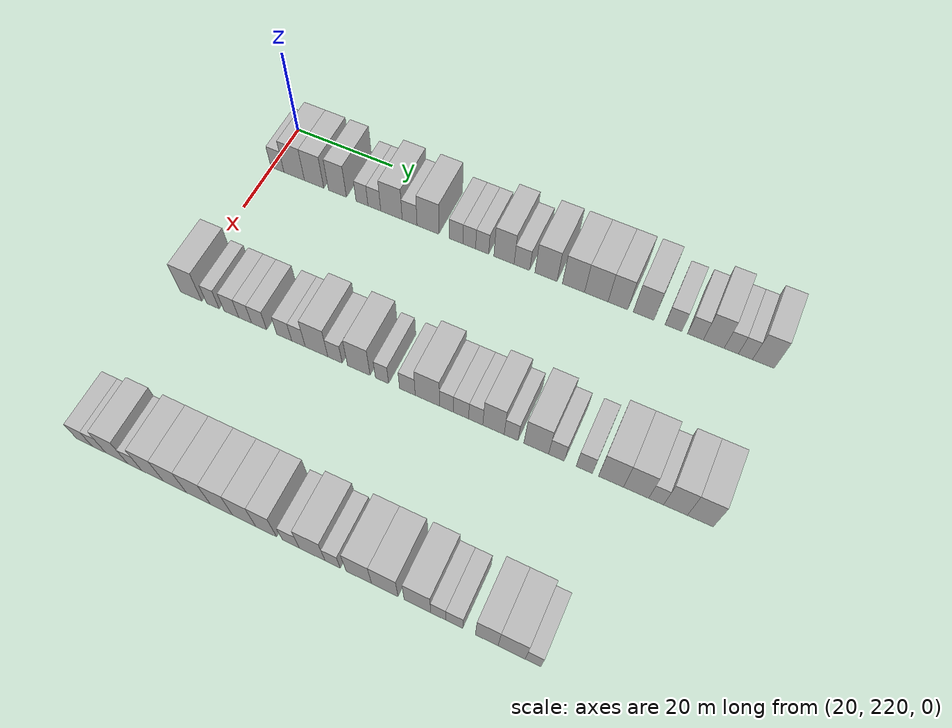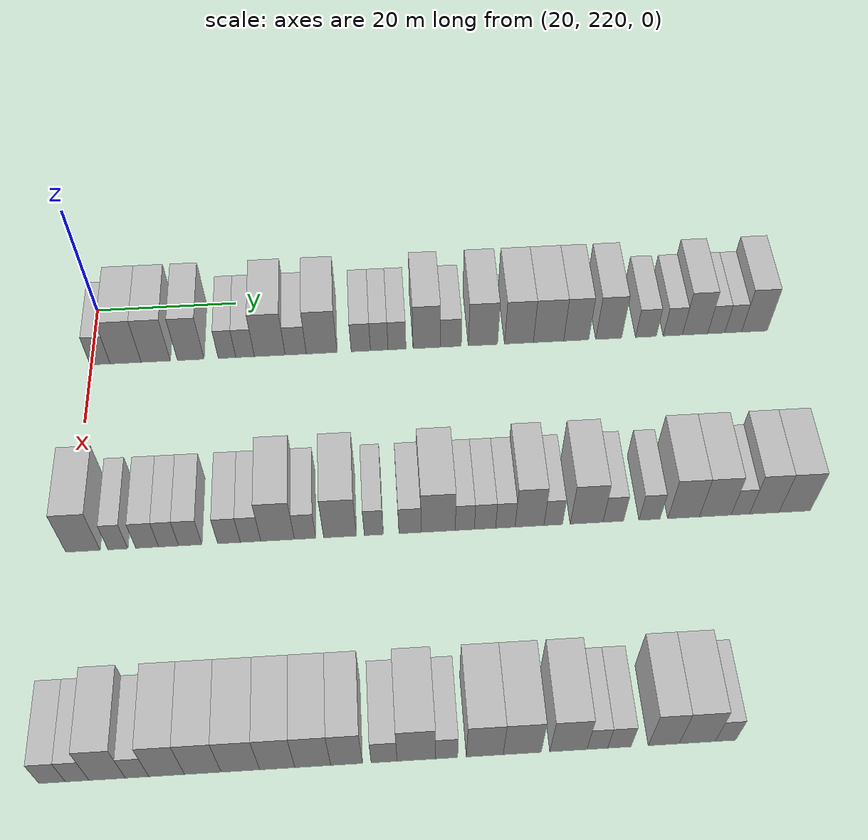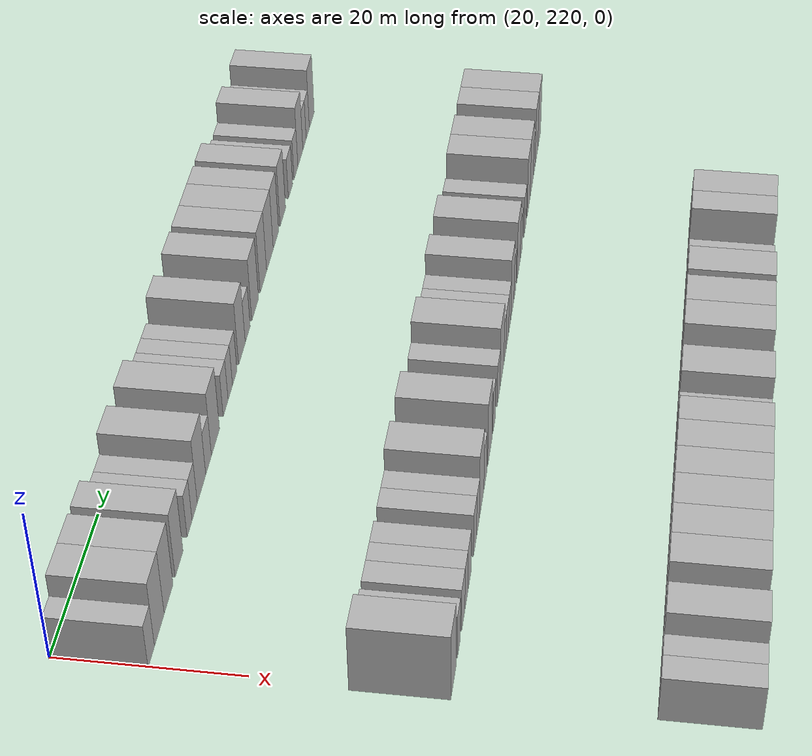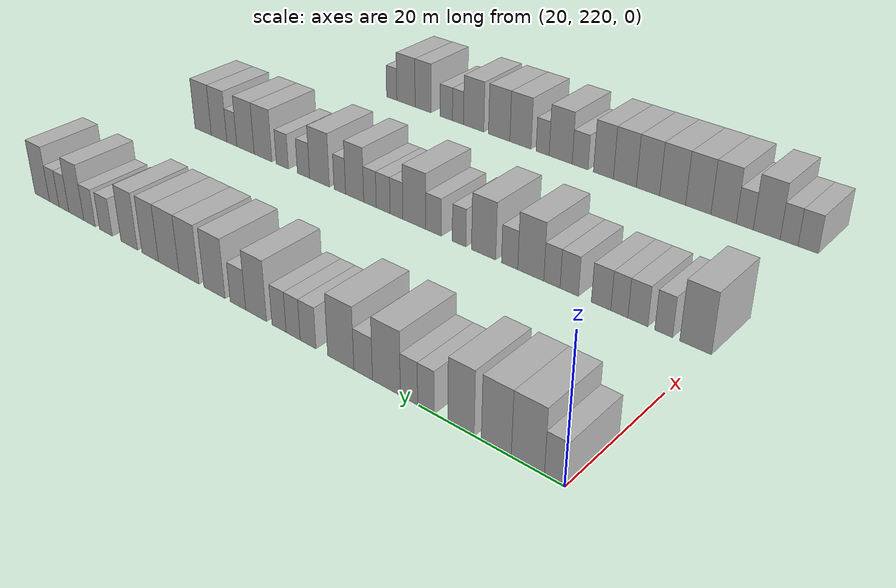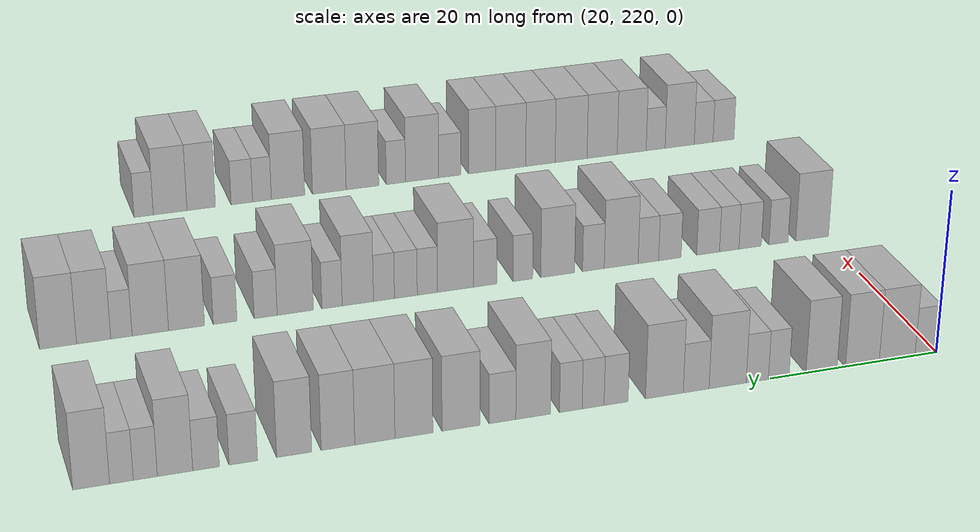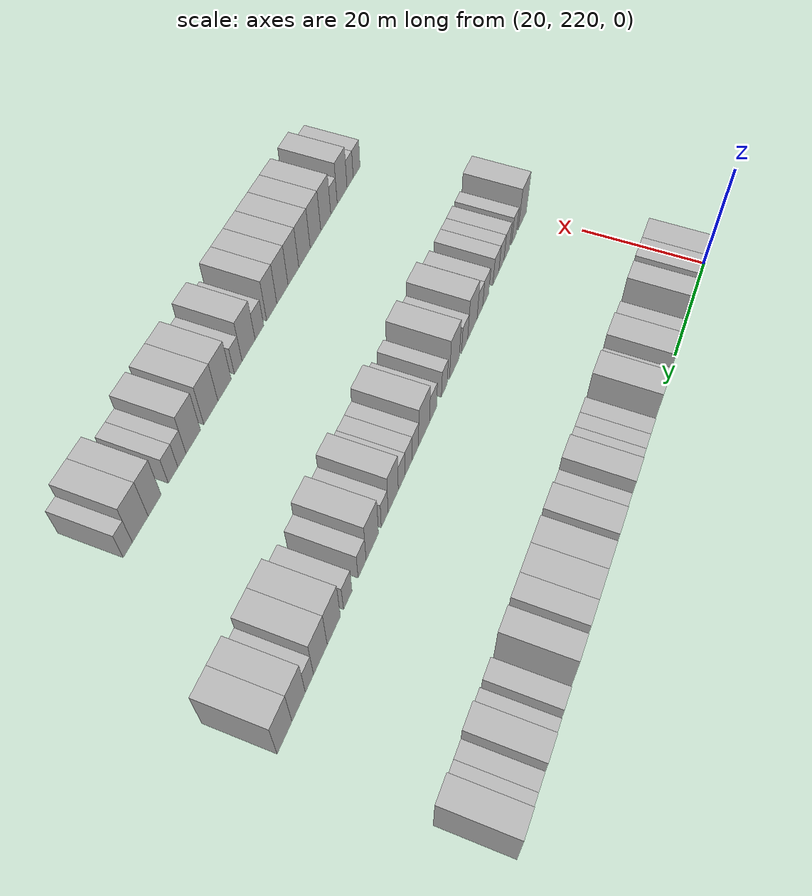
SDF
<sdf version="1.6">
 <world name="default">
  <model name="building_163">
   <static>1</static>
   <pose>25.0000 221.2316 0 0.000000 0.000000 0.000000</pose>
   <link name="link">
    <pose>0 0 3.00 0 0 0</pose>
    <collision name="collision"><geometry><box><size>10.0000 2.8083 6.0000</size></box></geometry></collision>
    <visual name="visual">
     <cast_shadows>0</cast_shadows>
     <geometry><box><size>10.0000 2.8083 6.0000</size></box></geometry>
     <material>
      <script>
       <uri>model://HANNAS_wall/materials/scripts</uri>
       <uri>model://HANNAS_wall/materials/textures</uri>
       <name>vrc/HANNAS_wall</name>
      </script>
     </material>
    </visual>
   </link>
  </model>
  <model name="building_164">
   <static>1</static>
   <pose>25.0000 224.8110 0 0.000000 0.000000 0.000000</pose>
   <link name="link">
    <pose>0 0 4.50 0 0 0</pose>
    <collision name="collision"><geometry><box><size>10.0000 4.3504 9.0000</size></box></geometry></collision>
    <visual name="visual">
     <cast_shadows>0</cast_shadows>
     <geometry><box><size>10.0000 4.3504 9.0000</size></box></geometry>
     <material>
      <script>
       <uri>model://HANNAS_wall/materials/scripts</uri>
       <uri>model://HANNAS_wall/materials/textures</uri>
       <name>vrc/HANNAS_wall</name>
      </script>
     </material>
    </visual>
   </link>
  </model>
  <model name="building_165">
   <static>1</static>
   <pose>25.0000 229.0244 0 0.000000 0.000000 0.000000</pose>
   <link name="link">
    <pose>0 0 4.50 0 0 0</pose>
    <collision name="collision"><geometry><box><size>10.0000 4.0764 9.0000</size></box></geometry></collision>
    <visual name="visual">
     <cast_shadows>0</cast_shadows>
     <geometry><box><size>10.0000 4.0764 9.0000</size></box></geometry>
     <material>
      <script>
       <uri>model://HANNAS_wall/materials/scripts</uri>
       <uri>model://HANNAS_wall/materials/textures</uri>
       <name>vrc/HANNAS_wall</name>
      </script>
     </material>
    </visual>
   </link>
  </model>
  <model name="building_166">
   <static>1</static>
   <pose>25.0000 233.9301 0 0.000000 0.000000 0.000000</pose>
   <link name="link">
    <pose>0 0 4.50 0 0 0</pose>
    <collision name="collision"><geometry><box><size>10.0000 3.7351 9.0000</size></box></geometry></collision>
    <visual name="visual">
     <cast_shadows>0</cast_shadows>
     <geometry><box><size>10.0000 3.7351 9.0000</size></box></geometry>
     <material>
      <script>
       <uri>model://HANNAS_wall/materials/scripts</uri>
       <uri>model://HANNAS_wall/materials/textures</uri>
       <name>vrc/HANNAS_wall</name>
      </script>
     </material>
    </visual>
   </link>
  </model>
  <model name="building_167">
   <static>1</static>
   <pose>25.0000 239.0233 0 0.000000 0.000000 0.000000</pose>
   <link name="link">
    <pose>0 0 3.00 0 0 0</pose>
    <collision name="collision"><geometry><box><size>10.0000 2.4512 6.0000</size></box></geometry></collision>
    <visual name="visual">
     <cast_shadows>0</cast_shadows>
     <geometry><box><size>10.0000 2.4512 6.0000</size></box></geometry>
     <material>
      <script>
       <uri>model://HANNAS_wall/materials/scripts</uri>
       <uri>model://HANNAS_wall/materials/textures</uri>
       <name>vrc/HANNAS_wall</name>
      </script>
     </material>
    </visual>
   </link>
  </model>
  <model name="building_168">
   <static>1</static>
   <pose>25.0000 241.5565 0 0.000000 0.000000 0.000000</pose>
   <link name="link">
    <pose>0 0 3.00 0 0 0</pose>
    <collision name="collision"><geometry><box><size>10.0000 2.6152 6.0000</size></box></geometry></collision>
    <visual name="visual">
     <cast_shadows>0</cast_shadows>
     <geometry><box><size>10.0000 2.6152 6.0000</size></box></geometry>
     <material>
      <script>
       <uri>model://HANNAS_wall/materials/scripts</uri>
       <uri>model://HANNAS_wall/materials/textures</uri>
       <name>vrc/HANNAS_wall</name>
      </script>
     </material>
    </visual>
   </link>
  </model>
  <model name="building_169">
   <static>1</static>
   <pose>25.0000 245.0369 0 0.000000 0.000000 0.000000</pose>
   <link name="link">
    <pose>0 0 4.50 0 0 0</pose>
    <collision name="collision"><geometry><box><size>10.0000 4.3455 9.0000</size></box></geometry></collision>
    <visual name="visual">
     <cast_shadows>0</cast_shadows>
     <geometry><box><size>10.0000 4.3455 9.0000</size></box></geometry>
     <material>
      <script>
       <uri>model://HANNAS_wall/materials/scripts</uri>
       <uri>model://HANNAS_wall/materials/textures</uri>
       <name>vrc/HANNAS_wall</name>
      </script>
     </material>
    </visual>
   </link>
  </model>
  <model name="building_170">
   <static>1</static>
   <pose>25.0000 248.7061 0 0.000000 0.000000 0.000000</pose>
   <link name="link">
    <pose>0 0 3.00 0 0 0</pose>
    <collision name="collision"><geometry><box><size>10.0000 2.9929 6.0000</size></box></geometry></collision>
    <visual name="visual">
     <cast_shadows>0</cast_shadows>
     <geometry><box><size>10.0000 2.9929 6.0000</size></box></geometry>
     <material>
      <script>
       <uri>model://HANNAS_wall/materials/scripts</uri>
       <uri>model://HANNAS_wall/materials/textures</uri>
       <name>vrc/HANNAS_wall</name>
      </script>
     </material>
    </visual>
   </link>
  </model>
  <model name="building_171">
   <static>1</static>
   <pose>25.0000 252.3776 0 0.000000 0.000000 0.000000</pose>
   <link name="link">
    <pose>0 0 4.50 0 0 0</pose>
    <collision name="collision"><geometry><box><size>10.0000 4.3501 9.0000</size></box></geometry></collision>
    <visual name="visual">
     <cast_shadows>0</cast_shadows>
     <geometry><box><size>10.0000 4.3501 9.0000</size></box></geometry>
     <material>
      <script>
       <uri>model://HANNAS_wall/materials/scripts</uri>
       <uri>model://HANNAS_wall/materials/textures</uri>
       <name>vrc/HANNAS_wall</name>
      </script>
     </material>
    </visual>
   </link>
  </model>
  <model name="building_172">
   <static>1</static>
   <pose>25.0000 257.9207 0 0.000000 0.000000 0.000000</pose>
   <link name="link">
    <pose>0 0 3.00 0 0 0</pose>
    <collision name="collision"><geometry><box><size>10.0000 2.7360 6.0000</size></box></geometry></collision>
    <visual name="visual">
     <cast_shadows>0</cast_shadows>
     <geometry><box><size>10.0000 2.7360 6.0000</size></box></geometry>
     <material>
      <script>
       <uri>model://HANNAS_wall/materials/scripts</uri>
       <uri>model://HANNAS_wall/materials/textures</uri>
       <name>vrc/HANNAS_wall</name>
      </script>
     </material>
    </visual>
   </link>
  </model>
  <model name="building_173">
   <static>1</static>
   <pose>25.0000 260.5329 0 0.000000 0.000000 0.000000</pose>
   <link name="link">
    <pose>0 0 3.00 0 0 0</pose>
    <collision name="collision"><geometry><box><size>10.0000 2.4884 6.0000</size></box></geometry></collision>
    <visual name="visual">
     <cast_shadows>0</cast_shadows>
     <geometry><box><size>10.0000 2.4884 6.0000</size></box></geometry>
     <material>
      <script>
       <uri>model://HANNAS_wall/materials/scripts</uri>
       <uri>model://HANNAS_wall/materials/textures</uri>
       <name>vrc/HANNAS_wall</name>
      </script>
     </material>
    </visual>
   </link>
  </model>
  <model name="building_174">
   <static>1</static>
   <pose>25.0000 263.0548 0 0.000000 0.000000 0.000000</pose>
   <link name="link">
    <pose>0 0 3.00 0 0 0</pose>
    <collision name="collision"><geometry><box><size>10.0000 2.5553 6.0000</size></box></geometry></collision>
    <visual name="visual">
     <cast_shadows>0</cast_shadows>
     <geometry><box><size>10.0000 2.5553 6.0000</size></box></geometry>
     <material>
      <script>
       <uri>model://HANNAS_wall/materials/scripts</uri>
       <uri>model://HANNAS_wall/materials/textures</uri>
       <name>vrc/HANNAS_wall</name>
      </script>
     </material>
    </visual>
   </link>
  </model>
  <model name="building_175">
   <static>1</static>
   <pose>25.0000 267.2758 0 0.000000 0.000000 0.000000</pose>
   <link name="link">
    <pose>0 0 4.50 0 0 0</pose>
    <collision name="collision"><geometry><box><size>10.0000 3.8867 9.0000</size></box></geometry></collision>
    <visual name="visual">
     <cast_shadows>0</cast_shadows>
     <geometry><box><size>10.0000 3.8867 9.0000</size></box></geometry>
     <material>
      <script>
       <uri>model://HANNAS_wall/materials/scripts</uri>
       <uri>model://HANNAS_wall/materials/textures</uri>
       <name>vrc/HANNAS_wall</name>
      </script>
     </material>
    </visual>
   </link>
  </model>
  <model name="building_176">
   <static>1</static>
   <pose>25.0000 270.7057 0 0.000000 0.000000 0.000000</pose>
   <link name="link">
    <pose>0 0 3.00 0 0 0</pose>
    <collision name="collision"><geometry><box><size>10.0000 2.9732 6.0000</size></box></geometry></collision>
    <visual name="visual">
     <cast_shadows>0</cast_shadows>
     <geometry><box><size>10.0000 2.9732 6.0000</size></box></geometry>
     <material>
      <script>
       <uri>model://HANNAS_wall/materials/scripts</uri>
       <uri>model://HANNAS_wall/materials/textures</uri>
       <name>vrc/HANNAS_wall</name>
      </script>
     </material>
    </visual>
   </link>
  </model>
  <model name="building_177">
   <static>1</static>
   <pose>25.0000 275.2808 0 0.000000 0.000000 0.000000</pose>
   <link name="link">
    <pose>0 0 4.50 0 0 0</pose>
    <collision name="collision"><geometry><box><size>10.0000 4.1769 9.0000</size></box></geometry></collision>
    <visual name="visual">
     <cast_shadows>0</cast_shadows>
     <geometry><box><size>10.0000 4.1769 9.0000</size></box></geometry>
     <material>
      <script>
       <uri>model://HANNAS_wall/materials/scripts</uri>
       <uri>model://HANNAS_wall/materials/textures</uri>
       <name>vrc/HANNAS_wall</name>
      </script>
     </material>
    </visual>
   </link>
  </model>
  <model name="building_178">
   <static>1</static>
   <pose>25.0000 280.4308 0 0.000000 0.000000 0.000000</pose>
   <link name="link">
    <pose>0 0 4.50 0 0 0</pose>
    <collision name="collision"><geometry><box><size>10.0000 4.1232 9.0000</size></box></geometry></collision>
    <visual name="visual">
     <cast_shadows>0</cast_shadows>
     <geometry><box><size>10.0000 4.1232 9.0000</size></box></geometry>
     <material>
      <script>
       <uri>model://HANNAS_wall/materials/scripts</uri>
       <uri>model://HANNAS_wall/materials/textures</uri>
       <name>vrc/HANNAS_wall</name>
      </script>
     </material>
    </visual>
   </link>
  </model>
  <model name="building_179">
   <static>1</static>
   <pose>25.0000 284.6614 0 0.000000 0.000000 0.000000</pose>
   <link name="link">
    <pose>0 0 4.50 0 0 0</pose>
    <collision name="collision"><geometry><box><size>10.0000 4.3380 9.0000</size></box></geometry></collision>
    <visual name="visual">
     <cast_shadows>0</cast_shadows>
     <geometry><box><size>10.0000 4.3380 9.0000</size></box></geometry>
     <material>
      <script>
       <uri>model://HANNAS_wall/materials/scripts</uri>
       <uri>model://HANNAS_wall/materials/textures</uri>
       <name>vrc/HANNAS_wall</name>
      </script>
     </material>
    </visual>
   </link>
  </model>
  <model name="building_180">
   <static>1</static>
   <pose>25.0000 288.6326 0 0.000000 0.000000 0.000000</pose>
   <link name="link">
    <pose>0 0 4.50 0 0 0</pose>
    <collision name="collision"><geometry><box><size>10.0000 3.6044 9.0000</size></box></geometry></collision>
    <visual name="visual">
     <cast_shadows>0</cast_shadows>
     <geometry><box><size>10.0000 3.6044 9.0000</size></box></geometry>
     <material>
      <script>
       <uri>model://HANNAS_wall/materials/scripts</uri>
       <uri>model://HANNAS_wall/materials/textures</uri>
       <name>vrc/HANNAS_wall</name>
      </script>
     </material>
    </visual>
   </link>
  </model>
  <model name="building_181">
   <static>1</static>
   <pose>25.0000 293.2981 0 0.000000 0.000000 0.000000</pose>
   <link name="link">
    <pose>0 0 4.50 0 0 0</pose>
    <collision name="collision"><geometry><box><size>10.0000 3.7267 9.0000</size></box></geometry></collision>
    <visual name="visual">
     <cast_shadows>0</cast_shadows>
     <geometry><box><size>10.0000 3.7267 9.0000</size></box></geometry>
     <material>
      <script>
       <uri>model://HANNAS_wall/materials/scripts</uri>
       <uri>model://HANNAS_wall/materials/textures</uri>
       <name>vrc/HANNAS_wall</name>
      </script>
     </material>
    </visual>
   </link>
  </model>
  <model name="building_182">
   <static>1</static>
   <pose>25.0000 298.6590 0 0.000000 0.000000 0.000000</pose>
   <link name="link">
    <pose>0 0 3.00 0 0 0</pose>
    <collision name="collision"><geometry><box><size>10.0000 2.9951 6.0000</size></box></geometry></collision>
    <visual name="visual">
     <cast_shadows>0</cast_shadows>
     <geometry><box><size>10.0000 2.9951 6.0000</size></box></geometry>
     <material>
      <script>
       <uri>model://HANNAS_wall/materials/scripts</uri>
       <uri>model://HANNAS_wall/materials/textures</uri>
       <name>vrc/HANNAS_wall</name>
      </script>
     </material>
    </visual>
   </link>
  </model>
  <model name="building_183">
   <static>1</static>
   <pose>25.0000 302.5436 0 0.000000 0.000000 0.000000</pose>
   <link name="link">
    <pose>0 0 3.00 0 0 0</pose>
    <collision name="collision"><geometry><box><size>10.0000 2.7740 6.0000</size></box></geometry></collision>
    <visual name="visual">
     <cast_shadows>0</cast_shadows>
     <geometry><box><size>10.0000 2.7740 6.0000</size></box></geometry>
     <material>
      <script>
       <uri>model://HANNAS_wall/materials/scripts</uri>
       <uri>model://HANNAS_wall/materials/textures</uri>
       <name>vrc/HANNAS_wall</name>
      </script>
     </material>
    </visual>
   </link>
  </model>
  <model name="building_184">
   <static>1</static>
   <pose>25.0000 305.7567 0 0.000000 0.000000 0.000000</pose>
   <link name="link">
    <pose>0 0 4.50 0 0 0</pose>
    <collision name="collision"><geometry><box><size>10.0000 3.6521 9.0000</size></box></geometry></collision>
    <visual name="visual">
     <cast_shadows>0</cast_shadows>
     <geometry><box><size>10.0000 3.6521 9.0000</size></box></geometry>
     <material>
      <script>
       <uri>model://HANNAS_wall/materials/scripts</uri>
       <uri>model://HANNAS_wall/materials/textures</uri>
       <name>vrc/HANNAS_wall</name>
      </script>
     </material>
    </visual>
   </link>
  </model>
  <model name="building_185">
   <static>1</static>
   <pose>25.0000 308.8152 0 0.000000 0.000000 0.000000</pose>
   <link name="link">
    <pose>0 0 3.00 0 0 0</pose>
    <collision name="collision"><geometry><box><size>10.0000 2.4648 6.0000</size></box></geometry></collision>
    <visual name="visual">
     <cast_shadows>0</cast_shadows>
     <geometry><box><size>10.0000 2.4648 6.0000</size></box></geometry>
     <material>
      <script>
       <uri>model://HANNAS_wall/materials/scripts</uri>
       <uri>model://HANNAS_wall/materials/textures</uri>
       <name>vrc/HANNAS_wall</name>
      </script>
     </material>
    </visual>
   </link>
  </model>
  <model name="building_186">
   <static>1</static>
   <pose>25.0000 311.2583 0 0.000000 0.000000 0.000000</pose>
   <link name="link">
    <pose>0 0 3.00 0 0 0</pose>
    <collision name="collision"><geometry><box><size>10.0000 2.4213 6.0000</size></box></geometry></collision>
    <visual name="visual">
     <cast_shadows>0</cast_shadows>
     <geometry><box><size>10.0000 2.4213 6.0000</size></box></geometry>
     <material>
      <script>
       <uri>model://HANNAS_wall/materials/scripts</uri>
       <uri>model://HANNAS_wall/materials/textures</uri>
       <name>vrc/HANNAS_wall</name>
      </script>
     </material>
    </visual>
   </link>
  </model>
  <model name="building_187">
   <static>1</static>
   <pose>25.0000 314.3374 0 0.000000 0.000000 0.000000</pose>
   <link name="link">
    <pose>0 0 4.50 0 0 0</pose>
    <collision name="collision"><geometry><box><size>10.0000 3.7370 9.0000</size></box></geometry></collision>
    <visual name="visual">
     <cast_shadows>0</cast_shadows>
     <geometry><box><size>10.0000 3.7370 9.0000</size></box></geometry>
     <material>
      <script>
       <uri>model://HANNAS_wall/materials/scripts</uri>
       <uri>model://HANNAS_wall/materials/textures</uri>
       <name>vrc/HANNAS_wall</name>
      </script>
     </material>
    </visual>
   </link>
  </model>
  <model name="building_398">
   <static>1</static>
   <pose>55.0000 221.6183 0 0.000000 0.000000 0.000000</pose>
   <link name="link">
    <pose>0 0 4.50 0 0 0</pose>
    <collision name="collision"><geometry><box><size>10.0000 4.3442 9.0000</size></box></geometry></collision>
    <visual name="visual">
     <cast_shadows>0</cast_shadows>
     <geometry><box><size>10.0000 4.3442 9.0000</size></box></geometry>
     <material>
      <script>
       <uri>model://HANNAS_wall/materials/scripts</uri>
       <uri>model://HANNAS_wall/materials/textures</uri>
       <name>vrc/HANNAS_wall</name>
      </script>
     </material>
    </visual>
   </link>
  </model>
  <model name="building_399">
   <static>1</static>
   <pose>55.0000 226.0464 0 0.000000 0.000000 0.000000</pose>
   <link name="link">
    <pose>0 0 3.00 0 0 0</pose>
    <collision name="collision"><geometry><box><size>10.0000 2.5120 6.0000</size></box></geometry></collision>
    <visual name="visual">
     <cast_shadows>0</cast_shadows>
     <geometry><box><size>10.0000 2.5120 6.0000</size></box></geometry>
     <material>
      <script>
       <uri>model://HANNAS_wall/materials/scripts</uri>
       <uri>model://HANNAS_wall/materials/textures</uri>
       <name>vrc/HANNAS_wall</name>
      </script>
     </material>
    </visual>
   </link>
  </model>
  <model name="building_400">
   <static>1</static>
   <pose>55.0000 229.7549 0 0.000000 0.000000 0.000000</pose>
   <link name="link">
    <pose>0 0 3.00 0 0 0</pose>
    <collision name="collision"><geometry><box><size>10.0000 2.9050 6.0000</size></box></geometry></collision>
    <visual name="visual">
     <cast_shadows>0</cast_shadows>
     <geometry><box><size>10.0000 2.9050 6.0000</size></box></geometry>
     <material>
      <script>
       <uri>model://HANNAS_wall/materials/scripts</uri>
       <uri>model://HANNAS_wall/materials/textures</uri>
       <name>vrc/HANNAS_wall</name>
      </script>
     </material>
    </visual>
   </link>
  </model>
  <model name="building_401">
   <static>1</static>
   <pose>55.0000 232.4763 0 0.000000 0.000000 0.000000</pose>
   <link name="link">
    <pose>0 0 3.00 0 0 0</pose>
    <collision name="collision"><geometry><box><size>10.0000 2.5379 6.0000</size></box></geometry></collision>
    <visual name="visual">
     <cast_shadows>0</cast_shadows>
     <geometry><box><size>10.0000 2.5379 6.0000</size></box></geometry>
     <material>
      <script>
       <uri>model://HANNAS_wall/materials/scripts</uri>
       <uri>model://HANNAS_wall/materials/textures</uri>
       <name>vrc/HANNAS_wall</name>
      </script>
     </material>
    </visual>
   </link>
  </model>
  <model name="building_402">
   <static>1</static>
   <pose>55.0000 235.2204 0 0.000000 0.000000 0.000000</pose>
   <link name="link">
    <pose>0 0 3.00 0 0 0</pose>
    <collision name="collision"><geometry><box><size>10.0000 2.9503 6.0000</size></box></geometry></collision>
    <visual name="visual">
     <cast_shadows>0</cast_shadows>
     <geometry><box><size>10.0000 2.9503 6.0000</size></box></geometry>
     <material>
      <script>
       <uri>model://HANNAS_wall/materials/scripts</uri>
       <uri>model://HANNAS_wall/materials/textures</uri>
       <name>vrc/HANNAS_wall</name>
      </script>
     </material>
    </visual>
   </link>
  </model>
  <model name="building_403">
   <static>1</static>
   <pose>55.0000 240.1378 0 0.000000 0.000000 0.000000</pose>
   <link name="link">
    <pose>0 0 3.00 0 0 0</pose>
    <collision name="collision"><geometry><box><size>10.0000 2.8846 6.0000</size></box></geometry></collision>
    <visual name="visual">
     <cast_shadows>0</cast_shadows>
     <geometry><box><size>10.0000 2.8846 6.0000</size></box></geometry>
     <material>
      <script>
       <uri>model://HANNAS_wall/materials/scripts</uri>
       <uri>model://HANNAS_wall/materials/textures</uri>
       <name>vrc/HANNAS_wall</name>
      </script>
     </material>
    </visual>
   </link>
  </model>
  <model name="building_404">
   <static>1</static>
   <pose>55.0000 242.8848 0 0.000000 0.000000 0.000000</pose>
   <link name="link">
    <pose>0 0 3.00 0 0 0</pose>
    <collision name="collision"><geometry><box><size>10.0000 2.6093 6.0000</size></box></geometry></collision>
    <visual name="visual">
     <cast_shadows>0</cast_shadows>
     <geometry><box><size>10.0000 2.6093 6.0000</size></box></geometry>
     <material>
      <script>
       <uri>model://HANNAS_wall/materials/scripts</uri>
       <uri>model://HANNAS_wall/materials/textures</uri>
       <name>vrc/HANNAS_wall</name>
      </script>
     </material>
    </visual>
   </link>
  </model>
  <model name="building_405">
   <static>1</static>
   <pose>55.0000 246.3378 0 0.000000 0.000000 0.000000</pose>
   <link name="link">
    <pose>0 0 4.50 0 0 0</pose>
    <collision name="collision"><geometry><box><size>10.0000 4.2967 9.0000</size></box></geometry></collision>
    <visual name="visual">
     <cast_shadows>0</cast_shadows>
     <geometry><box><size>10.0000 4.2967 9.0000</size></box></geometry>
     <material>
      <script>
       <uri>model://HANNAS_wall/materials/scripts</uri>
       <uri>model://HANNAS_wall/materials/textures</uri>
       <name>vrc/HANNAS_wall</name>
      </script>
     </material>
    </visual>
   </link>
  </model>
  <model name="building_406">
   <static>1</static>
   <pose>55.0000 249.8552 0 0.000000 0.000000 0.000000</pose>
   <link name="link">
    <pose>0 0 3.00 0 0 0</pose>
    <collision name="collision"><geometry><box><size>10.0000 2.7382 6.0000</size></box></geometry></collision>
    <visual name="visual">
     <cast_shadows>0</cast_shadows>
     <geometry><box><size>10.0000 2.7382 6.0000</size></box></geometry>
     <material>
      <script>
       <uri>model://HANNAS_wall/materials/scripts</uri>
       <uri>model://HANNAS_wall/materials/textures</uri>
       <name>vrc/HANNAS_wall</name>
      </script>
     </material>
    </visual>
   </link>
  </model>
  <model name="building_407">
   <static>1</static>
   <pose>55.0000 254.3318 0 0.000000 0.000000 0.000000</pose>
   <link name="link">
    <pose>0 0 4.50 0 0 0</pose>
    <collision name="collision"><geometry><box><size>10.0000 4.2149 9.0000</size></box></geometry></collision>
    <visual name="visual">
     <cast_shadows>0</cast_shadows>
     <geometry><box><size>10.0000 4.2149 9.0000</size></box></geometry>
     <material>
      <script>
       <uri>model://HANNAS_wall/materials/scripts</uri>
       <uri>model://HANNAS_wall/materials/textures</uri>
       <name>vrc/HANNAS_wall</name>
      </script>
     </material>
    </visual>
   </link>
  </model>
  <model name="building_408">
   <static>1</static>
   <pose>55.0000 258.6578 0 0.000000 0.000000 0.000000</pose>
   <link name="link">
    <pose>0 0 3.00 0 0 0</pose>
    <collision name="collision"><geometry><box><size>10.0000 2.4372 6.0000</size></box></geometry></collision>
    <visual name="visual">
     <cast_shadows>0</cast_shadows>
     <geometry><box><size>10.0000 2.4372 6.0000</size></box></geometry>
     <material>
      <script>
       <uri>model://HANNAS_wall/materials/scripts</uri>
       <uri>model://HANNAS_wall/materials/textures</uri>
       <name>vrc/HANNAS_wall</name>
      </script>
     </material>
    </visual>
   </link>
  </model>
  <model name="building_409">
   <static>1</static>
   <pose>55.0000 263.3075 0 0.000000 0.000000 0.000000</pose>
   <link name="link">
    <pose>0 0 3.00 0 0 0</pose>
    <collision name="collision"><geometry><box><size>10.0000 2.8622 6.0000</size></box></geometry></collision>
    <visual name="visual">
     <cast_shadows>0</cast_shadows>
     <geometry><box><size>10.0000 2.8622 6.0000</size></box></geometry>
     <material>
      <script>
       <uri>model://HANNAS_wall/materials/scripts</uri>
       <uri>model://HANNAS_wall/materials/textures</uri>
       <name>vrc/HANNAS_wall</name>
      </script>
     </material>
    </visual>
   </link>
  </model>
  <model name="building_410">
   <static>1</static>
   <pose>55.0000 266.9300 0 0.000000 0.000000 0.000000</pose>
   <link name="link">
    <pose>0 0 4.50 0 0 0</pose>
    <collision name="collision"><geometry><box><size>10.0000 4.3828 9.0000</size></box></geometry></collision>
    <visual name="visual">
     <cast_shadows>0</cast_shadows>
     <geometry><box><size>10.0000 4.3828 9.0000</size></box></geometry>
     <material>
      <script>
       <uri>model://HANNAS_wall/materials/scripts</uri>
       <uri>model://HANNAS_wall/materials/textures</uri>
       <name>vrc/HANNAS_wall</name>
      </script>
     </material>
    </visual>
   </link>
  </model>
  <model name="building_411">
   <static>1</static>
   <pose>55.0000 270.3511 0 0.000000 0.000000 0.000000</pose>
   <link name="link">
    <pose>0 0 3.00 0 0 0</pose>
    <collision name="collision"><geometry><box><size>10.0000 2.4593 6.0000</size></box></geometry></collision>
    <visual name="visual">
     <cast_shadows>0</cast_shadows>
     <geometry><box><size>10.0000 2.4593 6.0000</size></box></geometry>
     <material>
      <script>
       <uri>model://HANNAS_wall/materials/scripts</uri>
       <uri>model://HANNAS_wall/materials/textures</uri>
       <name>vrc/HANNAS_wall</name>
      </script>
     </material>
    </visual>
   </link>
  </model>
  <model name="building_412">
   <static>1</static>
   <pose>55.0000 272.9542 0 0.000000 0.000000 0.000000</pose>
   <link name="link">
    <pose>0 0 3.00 0 0 0</pose>
    <collision name="collision"><geometry><box><size>10.0000 2.7469 6.0000</size></box></geometry></collision>
    <visual name="visual">
     <cast_shadows>0</cast_shadows>
     <geometry><box><size>10.0000 2.7469 6.0000</size></box></geometry>
     <material>
      <script>
       <uri>model://HANNAS_wall/materials/scripts</uri>
       <uri>model://HANNAS_wall/materials/textures</uri>
       <name>vrc/HANNAS_wall</name>
      </script>
     </material>
    </visual>
   </link>
  </model>
  <model name="building_413">
   <static>1</static>
   <pose>55.0000 275.5854 0 0.000000 0.000000 0.000000</pose>
   <link name="link">
    <pose>0 0 3.00 0 0 0</pose>
    <collision name="collision"><geometry><box><size>10.0000 2.5155 6.0000</size></box></geometry></collision>
    <visual name="visual">
     <cast_shadows>0</cast_shadows>
     <geometry><box><size>10.0000 2.5155 6.0000</size></box></geometry>
     <material>
      <script>
       <uri>model://HANNAS_wall/materials/scripts</uri>
       <uri>model://HANNAS_wall/materials/textures</uri>
       <name>vrc/HANNAS_wall</name>
      </script>
     </material>
    </visual>
   </link>
  </model>
  <model name="building_414">
   <static>1</static>
   <pose>55.0000 278.7144 0 0.000000 0.000000 0.000000</pose>
   <link name="link">
    <pose>0 0 4.50 0 0 0</pose>
    <collision name="collision"><geometry><box><size>10.0000 3.7425 9.0000</size></box></geometry></collision>
    <visual name="visual">
     <cast_shadows>0</cast_shadows>
     <geometry><box><size>10.0000 3.7425 9.0000</size></box></geometry>
     <material>
      <script>
       <uri>model://HANNAS_wall/materials/scripts</uri>
       <uri>model://HANNAS_wall/materials/textures</uri>
       <name>vrc/HANNAS_wall</name>
      </script>
     </material>
    </visual>
   </link>
  </model>
  <model name="building_415">
   <static>1</static>
   <pose>55.0000 281.7907 0 0.000000 0.000000 0.000000</pose>
   <link name="link">
    <pose>0 0 3.00 0 0 0</pose>
    <collision name="collision"><geometry><box><size>10.0000 2.4101 6.0000</size></box></geometry></collision>
    <visual name="visual">
     <cast_shadows>0</cast_shadows>
     <geometry><box><size>10.0000 2.4101 6.0000</size></box></geometry>
     <material>
      <script>
       <uri>model://HANNAS_wall/materials/scripts</uri>
       <uri>model://HANNAS_wall/materials/textures</uri>
       <name>vrc/HANNAS_wall</name>
      </script>
     </material>
    </visual>
   </link>
  </model>
  <model name="building_416">
   <static>1</static>
   <pose>55.0000 286.1245 0 0.000000 0.000000 0.000000</pose>
   <link name="link">
    <pose>0 0 4.50 0 0 0</pose>
    <collision name="collision"><geometry><box><size>10.0000 4.2575 9.0000</size></box></geometry></collision>
    <visual name="visual">
     <cast_shadows>0</cast_shadows>
     <geometry><box><size>10.0000 4.2575 9.0000</size></box></geometry>
     <material>
      <script>
       <uri>model://HANNAS_wall/materials/scripts</uri>
       <uri>model://HANNAS_wall/materials/textures</uri>
       <name>vrc/HANNAS_wall</name>
      </script>
     </material>
    </visual>
   </link>
  </model>
  <model name="building_417">
   <static>1</static>
   <pose>55.0000 289.5986 0 0.000000 0.000000 0.000000</pose>
   <link name="link">
    <pose>0 0 3.00 0 0 0</pose>
    <collision name="collision"><geometry><box><size>10.0000 2.6907 6.0000</size></box></geometry></collision>
    <visual name="visual">
     <cast_shadows>0</cast_shadows>
     <geometry><box><size>10.0000 2.6907 6.0000</size></box></geometry>
     <material>
      <script>
       <uri>model://HANNAS_wall/materials/scripts</uri>
       <uri>model://HANNAS_wall/materials/textures</uri>
       <name>vrc/HANNAS_wall</name>
      </script>
     </material>
    </visual>
   </link>
  </model>
  <model name="building_418">
   <static>1</static>
   <pose>55.0000 294.3190 0 0.000000 0.000000 0.000000</pose>
   <link name="link">
    <pose>0 0 3.00 0 0 0</pose>
    <collision name="collision"><geometry><box><size>10.0000 2.7501 6.0000</size></box></geometry></collision>
    <visual name="visual">
     <cast_shadows>0</cast_shadows>
     <geometry><box><size>10.0000 2.7501 6.0000</size></box></geometry>
     <material>
      <script>
       <uri>model://HANNAS_wall/materials/scripts</uri>
       <uri>model://HANNAS_wall/materials/textures</uri>
       <name>vrc/HANNAS_wall</name>
      </script>
     </material>
    </visual>
   </link>
  </model>
  <model name="building_419">
   <static>1</static>
   <pose>55.0000 298.7641 0 0.000000 0.000000 0.000000</pose>
   <link name="link">
    <pose>0 0 4.50 0 0 0</pose>
    <collision name="collision"><geometry><box><size>10.0000 4.1401 9.0000</size></box></geometry></collision>
    <visual name="visual">
     <cast_shadows>0</cast_shadows>
     <geometry><box><size>10.0000 4.1401 9.0000</size></box></geometry>
     <material>
      <script>
       <uri>model://HANNAS_wall/materials/scripts</uri>
       <uri>model://HANNAS_wall/materials/textures</uri>
       <name>vrc/HANNAS_wall</name>
      </script>
     </material>
    </visual>
   </link>
  </model>
  <model name="building_420">
   <static>1</static>
   <pose>55.0000 302.9101 0 0.000000 0.000000 0.000000</pose>
   <link name="link">
    <pose>0 0 4.50 0 0 0</pose>
    <collision name="collision"><geometry><box><size>10.0000 4.1518 9.0000</size></box></geometry></collision>
    <visual name="visual">
     <cast_shadows>0</cast_shadows>
     <geometry><box><size>10.0000 4.1518 9.0000</size></box></geometry>
     <material>
      <script>
       <uri>model://HANNAS_wall/materials/scripts</uri>
       <uri>model://HANNAS_wall/materials/textures</uri>
       <name>vrc/HANNAS_wall</name>
      </script>
     </material>
    </visual>
   </link>
  </model>
  <model name="building_421">
   <static>1</static>
   <pose>55.0000 306.1951 0 0.000000 0.000000 0.000000</pose>
   <link name="link">
    <pose>0 0 3.00 0 0 0</pose>
    <collision name="collision"><geometry><box><size>10.0000 2.4181 6.0000</size></box></geometry></collision>
    <visual name="visual">
     <cast_shadows>0</cast_shadows>
     <geometry><box><size>10.0000 2.4181 6.0000</size></box></geometry>
     <material>
      <script>
       <uri>model://HANNAS_wall/materials/scripts</uri>
       <uri>model://HANNAS_wall/materials/textures</uri>
       <name>vrc/HANNAS_wall</name>
      </script>
     </material>
    </visual>
   </link>
  </model>
  <model name="building_422">
   <static>1</static>
   <pose>55.0000 309.3302 0 0.000000 0.000000 0.000000</pose>
   <link name="link">
    <pose>0 0 4.50 0 0 0</pose>
    <collision name="collision"><geometry><box><size>10.0000 3.8521 9.0000</size></box></geometry></collision>
    <visual name="visual">
     <cast_shadows>0</cast_shadows>
     <geometry><box><size>10.0000 3.8521 9.0000</size></box></geometry>
     <material>
      <script>
       <uri>model://HANNAS_wall/materials/scripts</uri>
       <uri>model://HANNAS_wall/materials/textures</uri>
       <name>vrc/HANNAS_wall</name>
      </script>
     </material>
    </visual>
   </link>
  </model>
  <model name="building_423">
   <static>1</static>
   <pose>55.0000 313.3268 0 0.000000 0.000000 0.000000</pose>
   <link name="link">
    <pose>0 0 4.50 0 0 0</pose>
    <collision name="collision"><geometry><box><size>10.0000 4.1411 9.0000</size></box></geometry></collision>
    <visual name="visual">
     <cast_shadows>0</cast_shadows>
     <geometry><box><size>10.0000 4.1411 9.0000</size></box></geometry>
     <material>
      <script>
       <uri>model://HANNAS_wall/materials/scripts</uri>
       <uri>model://HANNAS_wall/materials/textures</uri>
       <name>vrc/HANNAS_wall</name>
      </script>
     </material>
    </visual>
   </link>
  </model>
  <model name="building_632">
   <static>1</static>
   <pose>85.0000 220.9371 0 0.000000 0.000000 0.000000</pose>
   <link name="link">
    <pose>0 0 3.00 0 0 0</pose>
    <collision name="collision"><geometry><box><size>10.0000 2.9851 6.0000</size></box></geometry></collision>
    <visual name="visual">
     <cast_shadows>0</cast_shadows>
     <geometry><box><size>10.0000 2.9851 6.0000</size></box></geometry>
     <material>
      <script>
       <uri>model://HANNAS_wall/materials/scripts</uri>
       <uri>model://HANNAS_wall/materials/textures</uri>
       <name>vrc/HANNAS_wall</name>
      </script>
     </material>
    </visual>
   </link>
  </model>
  <model name="building_633">
   <static>1</static>
   <pose>85.0000 223.7616 0 0.000000 0.000000 0.000000</pose>
   <link name="link">
    <pose>0 0 3.00 0 0 0</pose>
    <collision name="collision"><geometry><box><size>10.0000 2.6637 6.0000</size></box></geometry></collision>
    <visual name="visual">
     <cast_shadows>0</cast_shadows>
     <geometry><box><size>10.0000 2.6637 6.0000</size></box></geometry>
     <material>
      <script>
       <uri>model://HANNAS_wall/materials/scripts</uri>
       <uri>model://HANNAS_wall/materials/textures</uri>
       <name>vrc/HANNAS_wall</name>
      </script>
     </material>
    </visual>
   </link>
  </model>
  <model name="building_634">
   <static>1</static>
   <pose>85.0000 227.1490 0 0.000000 0.000000 0.000000</pose>
   <link name="link">
    <pose>0 0 4.50 0 0 0</pose>
    <collision name="collision"><geometry><box><size>10.0000 4.1112 9.0000</size></box></geometry></collision>
    <visual name="visual">
     <cast_shadows>0</cast_shadows>
     <geometry><box><size>10.0000 4.1112 9.0000</size></box></geometry>
     <material>
      <script>
       <uri>model://HANNAS_wall/materials/scripts</uri>
       <uri>model://HANNAS_wall/materials/textures</uri>
       <name>vrc/HANNAS_wall</name>
      </script>
     </material>
    </visual>
   </link>
  </model>
  <model name="building_635">
   <static>1</static>
   <pose>85.0000 230.5334 0 0.000000 0.000000 0.000000</pose>
   <link name="link">
    <pose>0 0 3.00 0 0 0</pose>
    <collision name="collision"><geometry><box><size>10.0000 2.6575 6.0000</size></box></geometry></collision>
    <visual name="visual">
     <cast_shadows>0</cast_shadows>
     <geometry><box><size>10.0000 2.6575 6.0000</size></box></geometry>
     <material>
      <script>
       <uri>model://HANNAS_wall/materials/scripts</uri>
       <uri>model://HANNAS_wall/materials/textures</uri>
       <name>vrc/HANNAS_wall</name>
      </script>
     </material>
    </visual>
   </link>
  </model>
  <model name="building_636">
   <static>1</static>
   <pose>85.0000 233.8842 0 0.000000 0.000000 0.000000</pose>
   <link name="link">
    <pose>0 0 4.50 0 0 0</pose>
    <collision name="collision"><geometry><box><size>10.0000 4.0440 9.0000</size></box></geometry></collision>
    <visual name="visual">
     <cast_shadows>0</cast_shadows>
     <geometry><box><size>10.0000 4.0440 9.0000</size></box></geometry>
     <material>
      <script>
       <uri>model://HANNAS_wall/materials/scripts</uri>
       <uri>model://HANNAS_wall/materials/textures</uri>
       <name>vrc/HANNAS_wall</name>
      </script>
     </material>
    </visual>
   </link>
  </model>
  <model name="building_637">
   <static>1</static>
   <pose>85.0000 237.9949 0 0.000000 0.000000 0.000000</pose>
   <link name="link">
    <pose>0 0 4.50 0 0 0</pose>
    <collision name="collision"><geometry><box><size>10.0000 4.1774 9.0000</size></box></geometry></collision>
    <visual name="visual">
     <cast_shadows>0</cast_shadows>
     <geometry><box><size>10.0000 4.1774 9.0000</size></box></geometry>
     <material>
      <script>
       <uri>model://HANNAS_wall/materials/scripts</uri>
       <uri>model://HANNAS_wall/materials/textures</uri>
       <name>vrc/HANNAS_wall</name>
      </script>
     </material>
    </visual>
   </link>
  </model>
  <model name="building_638">
   <static>1</static>
   <pose>85.0000 242.2780 0 0.000000 0.000000 0.000000</pose>
   <link name="link">
    <pose>0 0 4.50 0 0 0</pose>
    <collision name="collision"><geometry><box><size>10.0000 4.3889 9.0000</size></box></geometry></collision>
    <visual name="visual">
     <cast_shadows>0</cast_shadows>
     <geometry><box><size>10.0000 4.3889 9.0000</size></box></geometry>
     <material>
      <script>
       <uri>model://HANNAS_wall/materials/scripts</uri>
       <uri>model://HANNAS_wall/materials/textures</uri>
       <name>vrc/HANNAS_wall</name>
      </script>
     </material>
    </visual>
   </link>
  </model>
  <model name="building_639">
   <static>1</static>
   <pose>85.0000 246.4874 0 0.000000 0.000000 0.000000</pose>
   <link name="link">
    <pose>0 0 4.50 0 0 0</pose>
    <collision name="collision"><geometry><box><size>10.0000 4.0299 9.0000</size></box></geometry></collision>
    <visual name="visual">
     <cast_shadows>0</cast_shadows>
     <geometry><box><size>10.0000 4.0299 9.0000</size></box></geometry>
     <material>
      <script>
       <uri>model://HANNAS_wall/materials/scripts</uri>
       <uri>model://HANNAS_wall/materials/textures</uri>
       <name>vrc/HANNAS_wall</name>
      </script>
     </material>
    </visual>
   </link>
  </model>
  <model name="building_640">
   <static>1</static>
   <pose>85.0000 250.5508 0 0.000000 0.000000 0.000000</pose>
   <link name="link">
    <pose>0 0 4.50 0 0 0</pose>
    <collision name="collision"><geometry><box><size>10.0000 4.0968 9.0000</size></box></geometry></collision>
    <visual name="visual">
     <cast_shadows>0</cast_shadows>
     <geometry><box><size>10.0000 4.0968 9.0000</size></box></geometry>
     <material>
      <script>
       <uri>model://HANNAS_wall/materials/scripts</uri>
       <uri>model://HANNAS_wall/materials/textures</uri>
       <name>vrc/HANNAS_wall</name>
      </script>
     </material>
    </visual>
   </link>
  </model>
  <model name="building_641">
   <static>1</static>
   <pose>85.0000 254.4189 0 0.000000 0.000000 0.000000</pose>
   <link name="link">
    <pose>0 0 4.50 0 0 0</pose>
    <collision name="collision"><geometry><box><size>10.0000 3.6393 9.0000</size></box></geometry></collision>
    <visual name="visual">
     <cast_shadows>0</cast_shadows>
     <geometry><box><size>10.0000 3.6393 9.0000</size></box></geometry>
     <material>
      <script>
       <uri>model://HANNAS_wall/materials/scripts</uri>
       <uri>model://HANNAS_wall/materials/textures</uri>
       <name>vrc/HANNAS_wall</name>
      </script>
     </material>
    </visual>
   </link>
  </model>
  <model name="building_642">
   <static>1</static>
   <pose>85.0000 258.7272 0 0.000000 0.000000 0.000000</pose>
   <link name="link">
    <pose>0 0 3.00 0 0 0</pose>
    <collision name="collision"><geometry><box><size>10.0000 2.9773 6.0000</size></box></geometry></collision>
    <visual name="visual">
     <cast_shadows>0</cast_shadows>
     <geometry><box><size>10.0000 2.9773 6.0000</size></box></geometry>
     <material>
      <script>
       <uri>model://HANNAS_wall/materials/scripts</uri>
       <uri>model://HANNAS_wall/materials/textures</uri>
       <name>vrc/HANNAS_wall</name>
      </script>
     </material>
    </visual>
   </link>
  </model>
  <model name="building_643">
   <static>1</static>
   <pose>85.0000 262.4248 0 0.000000 0.000000 0.000000</pose>
   <link name="link">
    <pose>0 0 4.50 0 0 0</pose>
    <collision name="collision"><geometry><box><size>10.0000 4.4179 9.0000</size></box></geometry></collision>
    <visual name="visual">
     <cast_shadows>0</cast_shadows>
     <geometry><box><size>10.0000 4.4179 9.0000</size></box></geometry>
     <material>
      <script>
       <uri>model://HANNAS_wall/materials/scripts</uri>
       <uri>model://HANNAS_wall/materials/textures</uri>
       <name>vrc/HANNAS_wall</name>
      </script>
     </material>
    </visual>
   </link>
  </model>
  <model name="building_644">
   <static>1</static>
   <pose>85.0000 265.9088 0 0.000000 0.000000 0.000000</pose>
   <link name="link">
    <pose>0 0 3.00 0 0 0</pose>
    <collision name="collision"><geometry><box><size>10.0000 2.5500 6.0000</size></box></geometry></collision>
    <visual name="visual">
     <cast_shadows>0</cast_shadows>
     <geometry><box><size>10.0000 2.5500 6.0000</size></box></geometry>
     <material>
      <script>
       <uri>model://HANNAS_wall/materials/scripts</uri>
       <uri>model://HANNAS_wall/materials/textures</uri>
       <name>vrc/HANNAS_wall</name>
      </script>
     </material>
    </visual>
   </link>
  </model>
  <model name="building_645">
   <static>1</static>
   <pose>85.0000 270.3211 0 0.000000 0.000000 0.000000</pose>
   <link name="link">
    <pose>0 0 4.50 0 0 0</pose>
    <collision name="collision"><geometry><box><size>10.0000 4.2747 9.0000</size></box></geometry></collision>
    <visual name="visual">
     <cast_shadows>0</cast_shadows>
     <geometry><box><size>10.0000 4.2747 9.0000</size></box></geometry>
     <material>
      <script>
       <uri>model://HANNAS_wall/materials/scripts</uri>
       <uri>model://HANNAS_wall/materials/textures</uri>
       <name>vrc/HANNAS_wall</name>
      </script>
     </material>
    </visual>
   </link>
  </model>
  <model name="building_646">
   <static>1</static>
   <pose>85.0000 274.6555 0 0.000000 0.000000 0.000000</pose>
   <link name="link">
    <pose>0 0 4.50 0 0 0</pose>
    <collision name="collision"><geometry><box><size>10.0000 4.3942 9.0000</size></box></geometry></collision>
    <visual name="visual">
     <cast_shadows>0</cast_shadows>
     <geometry><box><size>10.0000 4.3942 9.0000</size></box></geometry>
     <material>
      <script>
       <uri>model://HANNAS_wall/materials/scripts</uri>
       <uri>model://HANNAS_wall/materials/textures</uri>
       <name>vrc/HANNAS_wall</name>
      </script>
     </material>
    </visual>
   </link>
  </model>
  <model name="building_647">
   <static>1</static>
   <pose>85.0000 280.0079 0 0.000000 0.000000 0.000000</pose>
   <link name="link">
    <pose>0 0 4.50 0 0 0</pose>
    <collision name="collision"><geometry><box><size>10.0000 4.3106 9.0000</size></box></geometry></collision>
    <visual name="visual">
     <cast_shadows>0</cast_shadows>
     <geometry><box><size>10.0000 4.3106 9.0000</size></box></geometry>
     <material>
      <script>
       <uri>model://HANNAS_wall/materials/scripts</uri>
       <uri>model://HANNAS_wall/materials/textures</uri>
       <name>vrc/HANNAS_wall</name>
      </script>
     </material>
    </visual>
   </link>
  </model>
  <model name="building_648">
   <static>1</static>
   <pose>85.0000 283.3696 0 0.000000 0.000000 0.000000</pose>
   <link name="link">
    <pose>0 0 3.00 0 0 0</pose>
    <collision name="collision"><geometry><box><size>10.0000 2.4130 6.0000</size></box></geometry></collision>
    <visual name="visual">
     <cast_shadows>0</cast_shadows>
     <geometry><box><size>10.0000 2.4130 6.0000</size></box></geometry>
     <material>
      <script>
       <uri>model://HANNAS_wall/materials/scripts</uri>
       <uri>model://HANNAS_wall/materials/textures</uri>
       <name>vrc/HANNAS_wall</name>
      </script>
     </material>
    </visual>
   </link>
  </model>
  <model name="building_649">
   <static>1</static>
   <pose>85.0000 285.9444 0 0.000000 0.000000 0.000000</pose>
   <link name="link">
    <pose>0 0 3.00 0 0 0</pose>
    <collision name="collision"><geometry><box><size>10.0000 2.7365 6.0000</size></box></geometry></collision>
    <visual name="visual">
     <cast_shadows>0</cast_shadows>
     <geometry><box><size>10.0000 2.7365 6.0000</size></box></geometry>
     <material>
      <script>
       <uri>model://HANNAS_wall/materials/scripts</uri>
       <uri>model://HANNAS_wall/materials/textures</uri>
       <name>vrc/HANNAS_wall</name>
      </script>
     </material>
    </visual>
   </link>
  </model>
  <model name="building_650">
   <static>1</static>
   <pose>85.0000 291.1146 0 0.000000 0.000000 0.000000</pose>
   <link name="link">
    <pose>0 0 4.50 0 0 0</pose>
    <collision name="collision"><geometry><box><size>10.0000 3.6040 9.0000</size></box></geometry></collision>
    <visual name="visual">
     <cast_shadows>0</cast_shadows>
     <geometry><box><size>10.0000 3.6040 9.0000</size></box></geometry>
     <material>
      <script>
       <uri>model://HANNAS_wall/materials/scripts</uri>
       <uri>model://HANNAS_wall/materials/textures</uri>
       <name>vrc/HANNAS_wall</name>
      </script>
     </material>
    </visual>
   </link>
  </model>
  <model name="building_651">
   <static>1</static>
   <pose>85.0000 295.0330 0 0.000000 0.000000 0.000000</pose>
   <link name="link">
    <pose>0 0 4.50 0 0 0</pose>
    <collision name="collision"><geometry><box><size>10.0000 4.2328 9.0000</size></box></geometry></collision>
    <visual name="visual">
     <cast_shadows>0</cast_shadows>
     <geometry><box><size>10.0000 4.2328 9.0000</size></box></geometry>
     <material>
      <script>
       <uri>model://HANNAS_wall/materials/scripts</uri>
       <uri>model://HANNAS_wall/materials/textures</uri>
       <name>vrc/HANNAS_wall</name>
      </script>
     </material>
    </visual>
   </link>
  </model>
  <model name="building_652">
   <static>1</static>
   <pose>85.0000 298.3561 0 0.000000 0.000000 0.000000</pose>
   <link name="link">
    <pose>0 0 3.00 0 0 0</pose>
    <collision name="collision"><geometry><box><size>10.0000 2.4133 6.0000</size></box></geometry></collision>
    <visual name="visual">
     <cast_shadows>0</cast_shadows>
     <geometry><box><size>10.0000 2.4133 6.0000</size></box></geometry>
     <material>
      <script>
       <uri>model://HANNAS_wall/materials/scripts</uri>
       <uri>model://HANNAS_wall/materials/textures</uri>
       <name>vrc/HANNAS_wall</name>
      </script>
     </material>
    </visual>
   </link>
  </model>
 </world>
</sdf>
